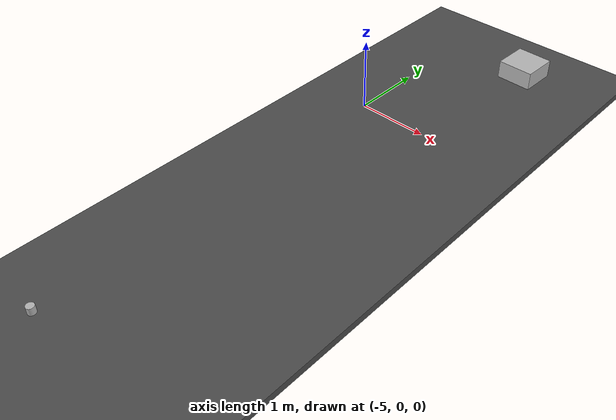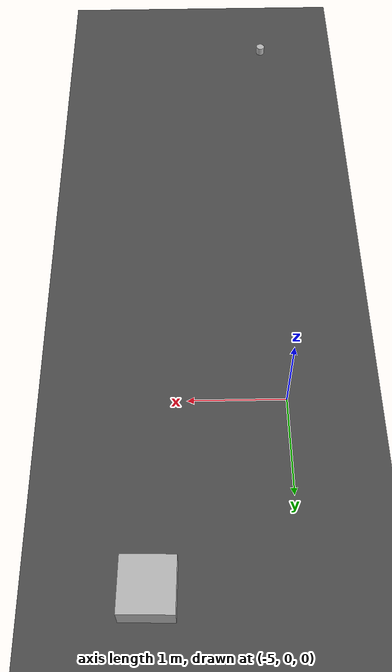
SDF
<sdf version="1.6">
 <world name="default">
  <plugin name="ros_link_attacher_plugin" filename="libgazebo_ros_link_attacher.so"/>
  <light name="sun" type="directional">
   <pose>0 0 10 0 -0 0</pose>
   <diffuse>0.8 0.8 0.8 1</diffuse>
   <specular>0.2 0.2 0.2 1</specular>
   <attenuation>
    <range>1000</range>
    <constant>0.9</constant>
    <linear>0.01</linear>
    <quadratic>0.001</quadratic>
   </attenuation>
   <direction>-0.5 0.1 -0.9</direction>
  </light>
  <model name="ground_plane">
   <static>1</static>
   <link name="link">
    <collision name="collision">
     <geometry><plane><normal>0 0 1</normal><size>100 100</size></plane></geometry>
     <surface>
      <contact><collide_bitmask>65535</collide_bitmask></contact>
      <friction><ode><mu>100</mu><mu2>50</mu2></ode></friction>
     </surface>
    </collision>
    <visual name="visual">
     <cast_shadows>0</cast_shadows>
     <geometry><plane><normal>0 0 1</normal><size>100 100</size></plane></geometry>
     <material>
      <script><uri>file://media/materials/scripts/gazebo.material</uri><name>Gazebo/Grey</name></script>
     </material>
    </visual>
   </link>
  </model>
  <model name="asphalt_plane">
   <static>1</static>
   <link name="link">
    <collision name="collision"><geometry><box><size>200 200 0.1</size></box></geometry></collision>
    <visual name="visual">
     <cast_shadows>0</cast_shadows>
     <geometry><box><size>200 200 0.1</size></box></geometry>
     <material>
      <script>
       <uri>model://asphalt_plane/materials/scripts</uri>
       <uri>model://asphalt_plane/materials/textures</uri>
       <name>vrc/asphalt</name>
      </script>
     </material>
    </visual>
   </link>
  </model>
  <model name="dummy_probe">
   <static>0</static>
   <pose>-4.99986 -5.14847 0.100023 -0.000195 0.000536 0.968355</pose>
   <link name="link">
    <inertial>
     <mass>0.05</mass>
     <inertia><ixx>4.2e-05</ixx><ixy>0</ixy><ixz>0</ixz><iyy>4.2e-05</iyy><iyz>0</iyz><izz>6.25e-05</izz></inertia>
    </inertial>
    <collision name="collision">
     <geometry><cylinder><radius>0.05</radius><length>0.1</length></cylinder></geometry>
     <surface><friction><ode><mu>100</mu><mu2>50</mu2></ode></friction></surface>
    </collision>
    <visual name="visual">
     <cast_shadows>0</cast_shadows>
     <geometry><cylinder><radius>0.05</radius><length>0.1</length></cylinder></geometry>
    </visual>
   </link>
  </model>
  <physics name="default_physics" default="0" type="ode">
   <ode>
    <solver>
     <type>quick</type>
     <iters>10</iters>
     <sor>1.3</sor>
     <use_dynamic_moi_rescaling>0</use_dynamic_moi_rescaling>
    </solver>
    <constraints>
     <cfm>0</cfm>
     <erp>0.2</erp>
     <contact_max_correcting_vel>100</contact_max_correcting_vel>
     <contact_surface_layer>0.001</contact_surface_layer>
    </constraints>
   </ode>
   <max_step_size>0.004</max_step_size>
   <real_time_factor>1</real_time_factor>
   <real_time_update_rate>250</real_time_update_rate>
  </physics>
  <gravity>0 0 -9.8066</gravity>
  <magnetic_field>6e-06 2.3e-05 -4.2e-05</magnetic_field>
  <atmosphere type="adiabatic"/>
  <scene><ambient>0.4 0.4 0.4 1</ambient><background>0.7 0.7 0.7 1</background><shadows>1</shadows></scene>
  <spherical_coordinates>
   <surface_model>EARTH_WGS84</surface_model>
   <latitude_deg>0</latitude_deg>
   <longitude_deg>0</longitude_deg>
   <elevation>0</elevation>
   <heading_deg>0</heading_deg>
  </spherical_coordinates>
  <model name="apriltag">
   <static>0</static>
   <link name="link">
    <inertial>
     <mass>0.01</mass>
     <inertia><ixx>0.01</ixx><ixy>0</ixy><ixz>0</ixz><iyy>0.01</iyy><iyz>0</iyz><izz>0.01</izz></inertia>
    </inertial>
    <collision name="collision">
     <geometry><box><size>0.5 0.5 0.25</size></box></geometry>
     <surface><friction><ode><mu>100</mu><mu2>50</mu2></ode></friction></surface>
    </collision>
    <visual name="visual">
     <cast_shadows>0</cast_shadows>
     <geometry><box><size>0.5 0.5 0.25</size></box></geometry>
     <material><script><name>AprilTag/Image</name><uri>__default__</uri></script></material>
    </visual>
   </link>
   <pose>-3.65922 1.9131 0.299994 -5e-05 -0.000288 -0.027789</pose>
  </model>
 </world>
</sdf>
